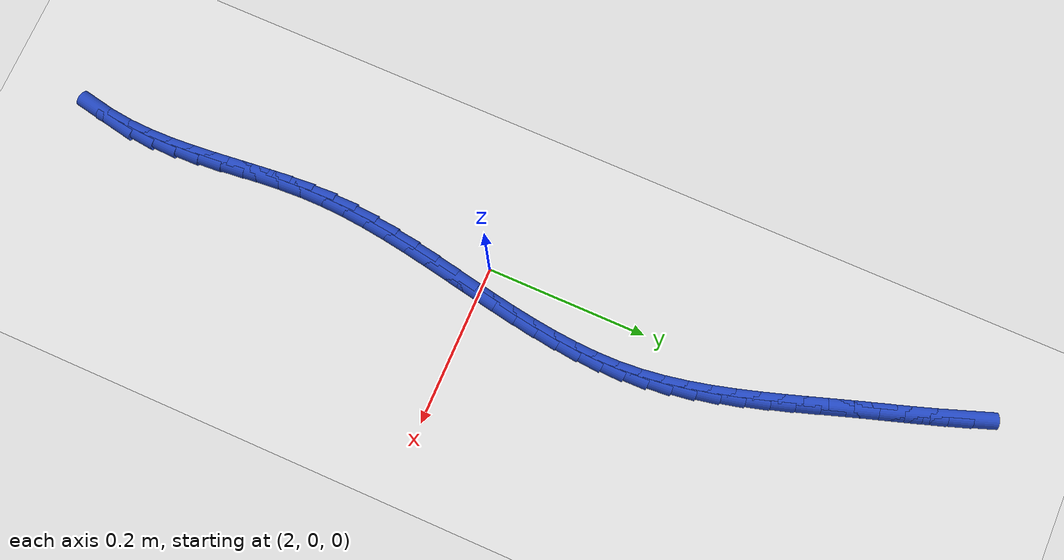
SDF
<sdf version="1.6">
 <world name="default">
  <model name="ground_plane">
   <static>1</static>
   <link name="link">
    <collision name="collision">
     <geometry><plane><normal>0 0 1</normal><size>100 100</size></plane></geometry>
     <surface><friction><ode><mu>100</mu><mu2>50</mu2></ode></friction></surface>
    </collision>
    <visual name="visual">
     <cast_shadows>0</cast_shadows>
     <geometry><plane><normal>0 0 1</normal><size>100 100</size></plane></geometry>
     <material>
      <script><uri>file://media/materials/scripts/gazebo.material</uri><name>Gazebo/WhiteGlow</name></script>
     </material>
    </visual>
   </link>
  </model>
  <model name="line">
   <link name="link_94">
    <pose>1.9447695384489014 0.5775716630618266 0.01 0 1.57 -1.2317527196773816</pose>
    <collision name="collision">
     <geometry><cylinder><radius>0.01</radius><length>0.08</length></cylinder></geometry>
    </collision>
    <visual name="visual">
     <material>
      <script><name>Gazebo/Blue</name><uri>file://media/materials/scripts/gazebo.material</uri></script>
     </material>
     <geometry><cylinder><radius>0.01</radius><length>0.08</length></cylinder></geometry>
    </visual>
   </link>
   <link name="link_95">
    <pose>1.9544891281484031 0.5500109606818812 0.01 0 1.57 -1.2494365020771696</pose>
    <collision name="collision">
     <geometry><cylinder><radius>0.01</radius><length>0.08</length></cylinder></geometry>
    </collision>
    <visual name="visual">
     <material>
      <script><name>Gazebo/Blue</name><uri>file://media/materials/scripts/gazebo.material</uri></script>
     </material>
     <geometry><cylinder><radius>0.01</radius><length>0.08</length></cylinder></geometry>
    </visual>
   </link>
   <link name="link_96">
    <pose>1.9637814235987194 0.5220977239634033 0.01 0 1.57 -1.259307782410658</pose>
    <collision name="collision">
     <geometry><cylinder><radius>0.01</radius><length>0.08</length></cylinder></geometry>
    </collision>
    <visual name="visual">
     <material>
      <script><name>Gazebo/Blue</name><uri>file://media/materials/scripts/gazebo.material</uri></script>
     </material>
     <geometry><cylinder><radius>0.01</radius><length>0.08</length></cylinder></geometry>
    </visual>
   </link>
   <link name="link_97">
    <pose>1.9728377244148665 0.49396990822416054 0.01 0 1.57 -1.2615377580723661</pose>
    <collision name="collision">
     <geometry><cylinder><radius>0.01</radius><length>0.08</length></cylinder></geometry>
    </collision>
    <visual name="visual">
     <material>
      <script><name>Gazebo/Blue</name><uri>file://media/materials/scripts/gazebo.material</uri></script>
     </material>
     <geometry><cylinder><radius>0.01</radius><length>0.08</length></cylinder></geometry>
    </visual>
   </link>
   <link name="link_98">
    <pose>1.981849330211863 0.46576546878191916 0.01 0 1.57 -1.256643544453208</pose>
    <collision name="collision">
     <geometry><cylinder><radius>0.01</radius><length>0.08</length></cylinder></geometry>
    </collision>
    <visual name="visual">
     <material>
      <script><name>Gazebo/Blue</name><uri>file://media/materials/scripts/gazebo.material</uri></script>
     </material>
     <geometry><cylinder><radius>0.01</radius><length>0.08</length></cylinder></geometry>
    </visual>
   </link>
   <link name="link_99">
    <pose>1.9909949997241907 0.43761737136599266 0.01 0 1.57 -1.2523994971616854</pose>
    <collision name="collision">
     <geometry><cylinder><radius>0.01</radius><length>0.08</length></cylinder></geometry>
    </collision>
    <visual name="visual">
     <material>
      <script><name>Gazebo/Blue</name><uri>file://media/materials/scripts/gazebo.material</uri></script>
     </material>
     <geometry><cylinder><radius>0.01</radius><length>0.08</length></cylinder></geometry>
    </visual>
   </link>
   <link name="link_100">
    <pose>2.0002386961877208 0.4095731219059218 0.01 0 1.57 -1.2553770026803892</pose>
    <collision name="collision">
     <geometry><cylinder><radius>0.01</radius><length>0.08</length></cylinder></geometry>
    </collision>
    <visual name="visual">
     <material>
      <script><name>Gazebo/Blue</name><uri>file://media/materials/scripts/gazebo.material</uri></script>
     </material>
     <geometry><cylinder><radius>0.01</radius><length>0.08</length></cylinder></geometry>
    </visual>
   </link>
   <link name="link_101">
    <pose>2.0093639463786253 0.38160843682067647 0.01 0 1.57 -1.2658779330798793</pose>
    <collision name="collision">
     <geometry><cylinder><radius>0.01</radius><length>0.08</length></cylinder></geometry>
    </collision>
    <visual name="visual">
     <material>
      <script><name>Gazebo/Blue</name><uri>file://media/materials/scripts/gazebo.material</uri></script>
     </material>
     <geometry><cylinder><radius>0.01</radius><length>0.08</length></cylinder></geometry>
    </visual>
   </link>
   <link name="link_102">
    <pose>2.0181486735167526 0.3536968030653678 0.01 0 1.57 -1.284064147736876</pose>
    <collision name="collision">
     <geometry><cylinder><radius>0.01</radius><length>0.08</length></cylinder></geometry>
    </collision>
    <visual name="visual">
     <material>
      <script><name>Gazebo/Blue</name><uri>file://media/materials/scripts/gazebo.material</uri></script>
     </material>
     <geometry><cylinder><radius>0.01</radius><length>0.08</length></cylinder></geometry>
    </visual>
   </link>
   <link name="link_103">
    <pose>2.026370800821951 0.32581170759510536 0.01 0 1.57 -1.3101459925883594</pose>
    <collision name="collision">
     <geometry><cylinder><radius>0.01</radius><length>0.08</length></cylinder></geometry>
    </collision>
    <visual name="visual">
     <material>
      <script><name>Gazebo/Blue</name><uri>file://media/materials/scripts/gazebo.material</uri></script>
     </material>
     <geometry><cylinder><radius>0.01</radius><length>0.08</length></cylinder></geometry>
    </visual>
   </link>
   <link name="link_104">
    <pose>2.0338082515140687 0.2979266373650005 0.01 0 1.57 -1.3443523444464098</pose>
    <collision name="collision">
     <geometry><cylinder><radius>0.01</radius><length>0.08</length></cylinder></geometry>
    </collision>
    <visual name="visual">
     <material>
      <script><name>Gazebo/Blue</name><uri>file://media/materials/scripts/gazebo.material</uri></script>
     </material>
     <geometry><cylinder><radius>0.01</radius><length>0.08</length></cylinder></geometry>
    </visual>
   </link>
   <link name="link_105">
    <pose>2.040238948812955 0.2700150793301631 0.01 0 1.57 -1.3868819554934098</pose>
    <collision name="collision">
     <geometry><cylinder><radius>0.01</radius><length>0.08</length></cylinder></geometry>
    </collision>
    <visual name="visual">
     <material>
      <script><name>Gazebo/Blue</name><uri>file://media/materials/scripts/gazebo.material</uri></script>
     </material>
     <geometry><cylinder><radius>0.01</radius><length>0.08</length></cylinder></geometry>
    </visual>
   </link>
   <link name="link_106">
    <pose>2.0454408159384574 0.24205052044570427 0.01 0 1.57 -1.4378331358386085</pose>
    <collision name="collision">
     <geometry><cylinder><radius>0.01</radius><length>0.08</length></cylinder></geometry>
    </collision>
    <visual name="visual">
     <material>
      <script><name>Gazebo/Blue</name><uri>file://media/materials/scripts/gazebo.material</uri></script>
     </material>
     <geometry><cylinder><radius>0.01</radius><length>0.08</length></cylinder></geometry>
    </visual>
   </link>
   <link name="link_107">
    <pose>2.0491917761104257 0.21400644766673418 0.01 0 1.57 -1.4970224020601024</pose>
    <collision name="collision">
     <geometry><cylinder><radius>0.01</radius><length>0.08</length></cylinder></geometry>
    </collision>
    <visual name="visual">
     <material>
      <script><name>Gazebo/Blue</name><uri>file://media/materials/scripts/gazebo.material</uri></script>
     </material>
     <geometry><cylinder><radius>0.01</radius><length>0.08</length></cylinder></geometry>
    </visual>
   </link>
   <link name="link_108">
    <pose>2.051272279438466 0.1858565624368356 0.01 0 1.57 -1.558250301588326</pose>
    <collision name="collision">
     <geometry><cylinder><radius>0.01</radius><length>0.08</length></cylinder></geometry>
    </collision>
    <visual name="visual">
     <material>
      <script><name>Gazebo/Blue</name><uri>file://media/materials/scripts/gazebo.material</uri></script>
     </material>
     <geometry><cylinder><radius>0.01</radius><length>0.08</length></cylinder></geometry>
    </visual>
   </link>
   <link name="link_109">
    <pose>2.051626949850312 0.15758850166763197 0.01 0 1.57 1.5297791505027574</pose>
    <collision name="collision">
     <geometry><cylinder><radius>0.01</radius><length>0.08</length></cylinder></geometry>
    </collision>
    <visual name="visual">
     <material>
      <script><name>Gazebo/Blue</name><uri>file://media/materials/scripts/gazebo.material</uri></script>
     </material>
     <geometry><cylinder><radius>0.01</radius><length>0.08</length></cylinder></geometry>
    </visual>
   </link>
   <link name="link_110">
    <pose>2.0504623783983593 0.12921213866955097 0.01 0 1.57 1.48482867673259</pose>
    <collision name="collision">
     <geometry><cylinder><radius>0.01</radius><length>0.08</length></cylinder></geometry>
    </collision>
    <visual name="visual">
     <material>
      <script><name>Gazebo/Blue</name><uri>file://media/materials/scripts/gazebo.material</uri></script>
     </material>
     <geometry><cylinder><radius>0.01</radius><length>0.08</length></cylinder></geometry>
    </visual>
   </link>
   <link name="link_111">
    <pose>2.048008590621108 0.10073933592849338 0.01 0 1.57 1.4483965288731824</pose>
    <collision name="collision">
     <geometry><cylinder><radius>0.01</radius><length>0.08</length></cylinder></geometry>
    </collision>
    <visual name="visual">
     <material>
      <script><name>Gazebo/Blue</name><uri>file://media/materials/scripts/gazebo.material</uri></script>
     </material>
     <geometry><cylinder><radius>0.01</radius><length>0.08</length></cylinder></geometry>
    </visual>
   </link>
   <link name="link_112">
    <pose>2.0444956120570557 0.07218195593035845 0.01 0 1.57 1.4202797654180324</pose>
    <collision name="collision">
     <geometry><cylinder><radius>0.01</radius><length>0.08</length></cylinder></geometry>
    </collision>
    <visual name="visual">
     <material>
      <script><name>Gazebo/Blue</name><uri>file://media/materials/scripts/gazebo.material</uri></script>
     </material>
     <geometry><cylinder><radius>0.01</radius><length>0.08</length></cylinder></geometry>
    </visual>
   </link>
   <link name="link_113">
    <pose>2.040153468244703 0.04355186116104706 0.01 0 1.57 1.4002449662135965</pose>
    <collision name="collision">
     <geometry><cylinder><radius>0.01</radius><length>0.08</length></cylinder></geometry>
    </collision>
    <visual name="visual">
     <material>
      <script><name>Gazebo/Blue</name><uri>file://media/materials/scripts/gazebo.material</uri></script>
     </material>
     <geometry><cylinder><radius>0.01</radius><length>0.08</length></cylinder></geometry>
    </visual>
   </link>
   <link name="link_114">
    <pose>2.0352121847225475 0.014860914106458439 0.01 0 1.57 1.3880829356934166</pose>
    <collision name="collision">
     <geometry><cylinder><radius>0.01</radius><length>0.08</length></cylinder></geometry>
    </collision>
    <visual name="visual">
     <material>
      <script><name>Gazebo/Blue</name><uri>file://media/materials/scripts/gazebo.material</uri></script>
     </material>
     <geometry><cylinder><radius>0.01</radius><length>0.08</length></cylinder></geometry>
    </visual>
   </link>
   <link name="link_115">
    <pose>2.0299017870290896 -0.013879022747506641 0.01 0 1.57 1.3836433826684016</pose>
    <collision name="collision">
     <geometry><cylinder><radius>0.01</radius><length>0.08</length></cylinder></geometry>
    </collision>
    <visual name="visual">
     <material>
      <script><name>Gazebo/Blue</name><uri>file://media/materials/scripts/gazebo.material</uri></script>
     </material>
     <geometry><cylinder><radius>0.01</radius><length>0.08</length></cylinder></geometry>
    </visual>
   </link>
   <link name="link_116">
    <pose>2.0244523007028263 -0.042656086914948474 0.01 0 1.57 1.3868536560392821</pose>
    <collision name="collision">
     <geometry><cylinder><radius>0.01</radius><length>0.08</length></cylinder></geometry>
    </collision>
    <visual name="visual">
     <material>
      <script><name>Gazebo/Blue</name><uri>file://media/materials/scripts/gazebo.material</uri></script>
     </material>
     <geometry><cylinder><radius>0.01</radius><length>0.08</length></cylinder></geometry>
    </visual>
   </link>
   <link name="link_117">
    <pose>2.0190937512822593 -0.07145841590996778 0.01 0 1.57 1.397724615749897</pose>
    <collision name="collision">
     <geometry><cylinder><radius>0.01</radius><length>0.08</length></cylinder></geometry>
    </collision>
    <visual name="visual">
     <material>
      <script><name>Gazebo/Blue</name><uri>file://media/materials/scripts/gazebo.material</uri></script>
     </material>
     <geometry><cylinder><radius>0.01</radius><length>0.08</length></cylinder></geometry>
    </visual>
   </link>
   <link name="link_118">
    <pose>2.0140561643058845 -0.10027414724666303 0.01 0 1.57 1.4163449966087462</pose>
    <collision name="collision">
     <geometry><cylinder><radius>0.01</radius><length>0.08</length></cylinder></geometry>
    </collision>
    <visual name="visual">
     <material>
      <script><name>Gazebo/Blue</name><uri>file://media/materials/scripts/gazebo.material</uri></script>
     </material>
     <geometry><cylinder><radius>0.01</radius><length>0.08</length></cylinder></geometry>
    </visual>
   </link>
   <link name="link_119">
    <pose>2.009569565312203 -0.12909141843913496 0.01 0 1.57 1.4428637466507135</pose>
    <collision name="collision">
     <geometry><cylinder><radius>0.01</radius><length>0.08</length></cylinder></geometry>
    </collision>
    <visual name="visual">
     <material>
      <script><name>Gazebo/Blue</name><uri>file://media/materials/scripts/gazebo.material</uri></script>
     </material>
     <geometry><cylinder><radius>0.01</radius><length>0.08</length></cylinder></geometry>
    </visual>
   </link>
   <link name="link_120">
    <pose>2.0058639798397135 -0.15789836700148346 0.01 0 1.57 1.4774581656034034</pose>
    <collision name="collision">
     <geometry><cylinder><radius>0.01</radius><length>0.08</length></cylinder></geometry>
    </collision>
    <visual name="visual">
     <material>
      <script><name>Gazebo/Blue</name><uri>file://media/materials/scripts/gazebo.material</uri></script>
     </material>
     <geometry><cylinder><radius>0.01</radius><length>0.08</length></cylinder></geometry>
    </visual>
   </link>
   <link name="link_121">
    <pose>2.0031694334269146 -0.1866831304478086 0.01 0 1.57 1.520284699104089</pose>
    <collision name="collision">
     <geometry><cylinder><radius>0.01</radius><length>0.08</length></cylinder></geometry>
    </collision>
    <visual name="visual">
     <material>
      <script><name>Gazebo/Blue</name><uri>file://media/materials/scripts/gazebo.material</uri></script>
     </material>
     <geometry><cylinder><radius>0.01</radius><length>0.08</length></cylinder></geometry>
    </visual>
   </link>
   <link name="link_122">
    <pose>2.0017159516123044 -0.21543384629221096 0.01 0 1.57 -1.5704730454342877</pose>
    <collision name="collision">
     <geometry><cylinder><radius>0.01</radius><length>0.08</length></cylinder></geometry>
    </collision>
    <visual name="visual">
     <material>
      <script><name>Gazebo/Blue</name><uri>file://media/materials/scripts/gazebo.material</uri></script>
     </material>
     <geometry><cylinder><radius>0.01</radius><length>0.08</length></cylinder></geometry>
    </visual>
   </link>
   <link name="link_123">
    <pose>2.001725231491692 -0.24413911728844442 0.01 0 1.57 -1.5218194374203236</pose>
    <collision name="collision">
     <geometry><cylinder><radius>0.01</radius><length>0.08</length></cylinder></geometry>
    </collision>
    <visual name="visual">
     <material>
      <script><name>Gazebo/Blue</name><uri>file://media/materials/scripts/gazebo.material</uri></script>
     </material>
     <geometry><cylinder><radius>0.01</radius><length>0.08</length></cylinder></geometry>
    </visual>
   </link>
   <link name="link_124">
    <pose>2.0031302559322484 -0.2728036742124189 0.01 0 1.57 -1.487986631301118</pose>
    <collision name="collision">
     <geometry><cylinder><radius>0.01</radius><length>0.08</length></cylinder></geometry>
    </collision>
    <visual name="visual">
     <material>
      <script><name>Gazebo/Blue</name><uri>file://media/materials/scripts/gazebo.material</uri></script>
     </material>
     <geometry><cylinder><radius>0.01</radius><length>0.08</length></cylinder></geometry>
    </visual>
   </link>
   <link name="link_125">
    <pose>2.0055080636662 -0.30145213142846533 0.01 0 1.57 -1.4697510879479838</pose>
    <collision name="collision">
     <geometry><cylinder><radius>0.01</radius><length>0.08</length></cylinder></geometry>
    </collision>
    <visual name="visual">
     <material>
      <script><name>Gazebo/Blue</name><uri>file://media/materials/scripts/gazebo.material</uri></script>
     </material>
     <geometry><cylinder><radius>0.01</radius><length>0.08</length></cylinder></geometry>
    </visual>
   </link>
   <link name="link_126">
    <pose>2.0084137340229615 -0.3301103299870294 0.01 0 1.57 -1.4670151294423626</pose>
    <collision name="collision">
     <geometry><cylinder><radius>0.01</radius><length>0.08</length></cylinder></geometry>
    </collision>
    <visual name="visual">
     <material>
      <script><name>Gazebo/Blue</name><uri>file://media/materials/scripts/gazebo.material</uri></script>
     </material>
     <geometry><cylinder><radius>0.01</radius><length>0.08</length></cylinder></geometry>
    </visual>
   </link>
   <link name="link_127">
    <pose>2.0114023463319435 -0.3588041109385545 0.01 0 1.57 -1.479704484568105</pose>
    <collision name="collision">
     <geometry><cylinder><radius>0.01</radius><length>0.08</length></cylinder></geometry>
    </collision>
    <visual name="visual">
     <material>
      <script><name>Gazebo/Blue</name><uri>file://media/materials/scripts/gazebo.material</uri></script>
     </material>
     <geometry><cylinder><radius>0.01</radius><length>0.08</length></cylinder></geometry>
    </visual>
   </link>
   <link name="link_128">
    <pose>2.0140289799225597 -0.3875593153334863 0.01 0 1.57 -1.5077876640976542</pose>
    <collision name="collision">
     <geometry><cylinder><radius>0.01</radius><length>0.08</length></cylinder></geometry>
    </collision>
    <visual name="visual">
     <material>
      <script><name>Gazebo/Blue</name><uri>file://media/materials/scripts/gazebo.material</uri></script>
     </material>
     <geometry><cylinder><radius>0.01</radius><length>0.08</length></cylinder></geometry>
    </visual>
   </link>
   <link name="link_129">
    <pose>2.015848714124221 -0.4164017842222695 0.01 0 1.57 -1.5511855489715893</pose>
    <collision name="collision">
     <geometry><cylinder><radius>0.01</radius><length>0.08</length></cylinder></geometry>
    </collision>
    <visual name="visual">
     <material>
      <script><name>Gazebo/Blue</name><uri>file://media/materials/scripts/gazebo.material</uri></script>
     </material>
     <geometry><cylinder><radius>0.01</radius><length>0.08</length></cylinder></geometry>
    </visual>
   </link>
   <link name="link_130">
    <pose>2.0164166282663416 -0.44535735865534903 0.01 0 1.57 1.5320171807587788</pose>
    <collision name="collision">
     <geometry><cylinder><radius>0.01</radius><length>0.08</length></cylinder></geometry>
    </collision>
    <visual name="visual">
     <material>
      <script><name>Gazebo/Blue</name><uri>file://media/materials/scripts/gazebo.material</uri></script>
     </material>
     <geometry><cylinder><radius>0.01</radius><length>0.08</length></cylinder></geometry>
    </visual>
   </link>
   <link name="link_131">
    <pose>2.0152878016783333 -0.4744518796831706 0.01 0 1.57 1.4596204361337703</pose>
    <collision name="collision">
     <geometry><cylinder><radius>0.01</radius><length>0.08</length></cylinder></geometry>
    </collision>
    <visual name="visual">
     <material>
      <script><name>Gazebo/Blue</name><uri>file://media/materials/scripts/gazebo.material</uri></script>
     </material>
     <geometry><cylinder><radius>0.01</radius><length>0.08</length></cylinder></geometry>
    </visual>
   </link>
   <link name="link_132">
    <pose>2.0120216745602826 -0.5037087578428138 0.01 0 1.57 1.3809834988531051</pose>
    <collision name="collision">
     <geometry><cylinder><radius>0.01</radius><length>0.08</length></cylinder></geometry>
    </collision>
    <visual name="visual">
     <material>
      <script><name>Gazebo/Blue</name><uri>file://media/materials/scripts/gazebo.material</uri></script>
     </material>
     <geometry><cylinder><radius>0.01</radius><length>0.08</length></cylinder></geometry>
    </visual>
   </link>
  </model>
 </world>
</sdf>
